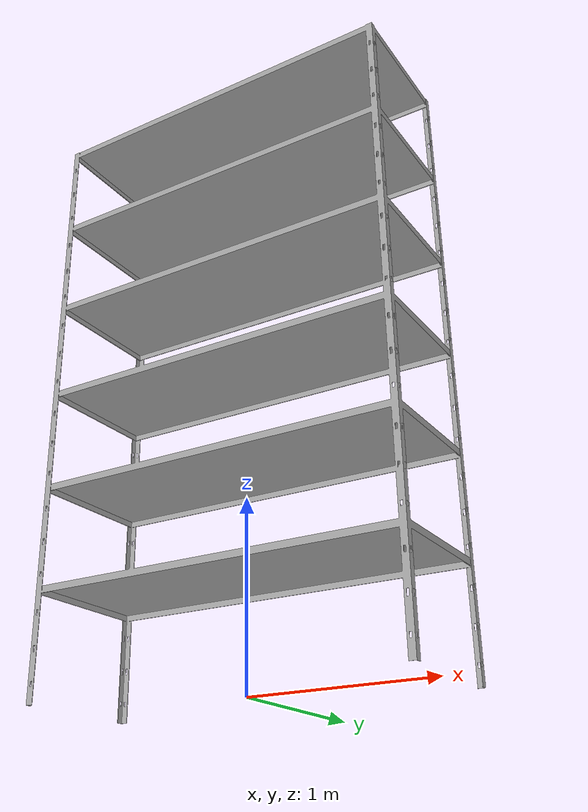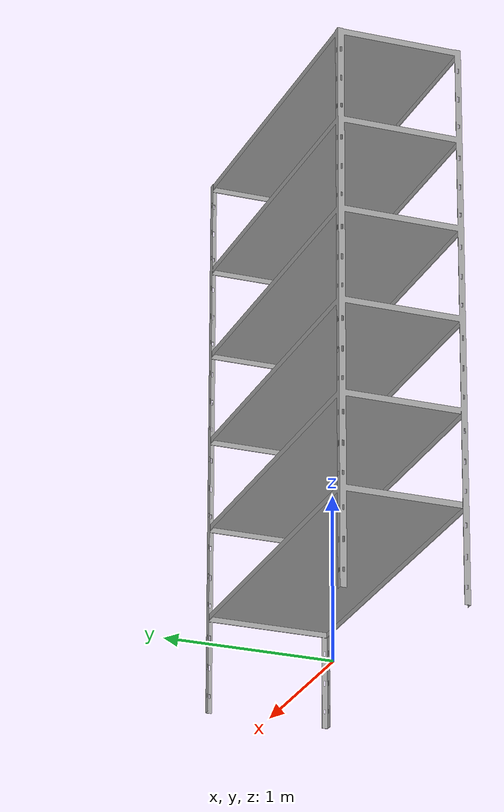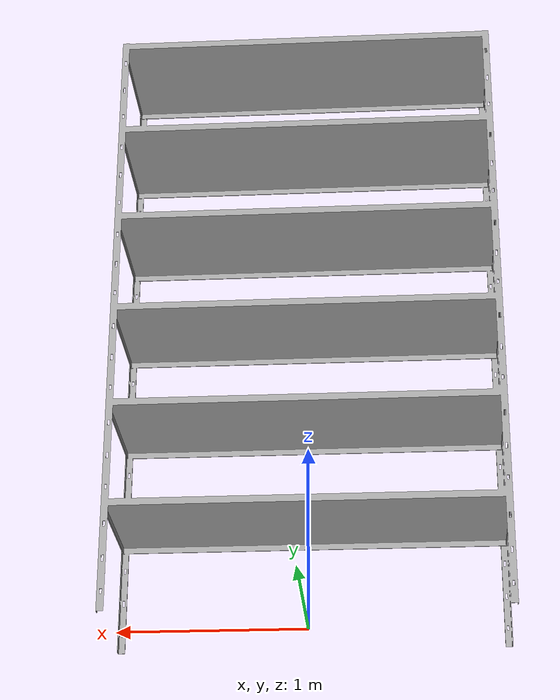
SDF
<?xml version="1.0"?>
<sdf version="1.5">
  <model name="prateleira">
    <static>true</static>
    <link name="shelve_link">
      <collision name="shelve_collision">
        <geometry>
          <mesh>
            <uri>model://prateleira/meshes/prateleira.dae</uri>
          </mesh>
        </geometry>
      </collision>

      <visual name="table_mesh">
        <cast_shadows>true</cast_shadows>
        <geometry>
          <mesh>
            <uri>model://prateleira/meshes/prateleira.dae</uri>
          </mesh>
        </geometry>
      </visual>
    </link>
  </model>
</sdf>
